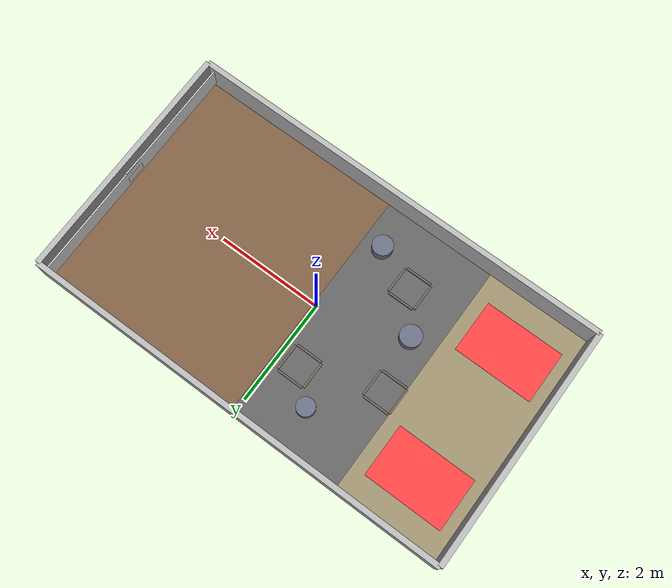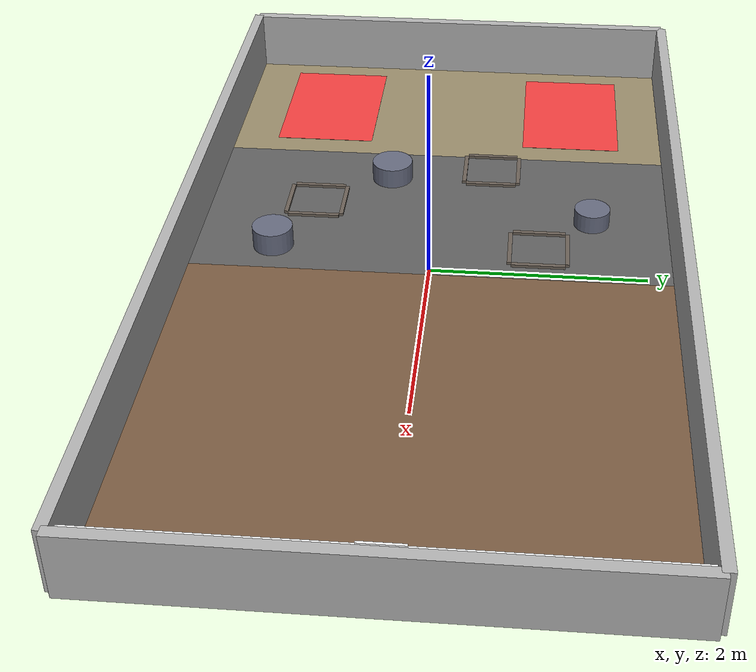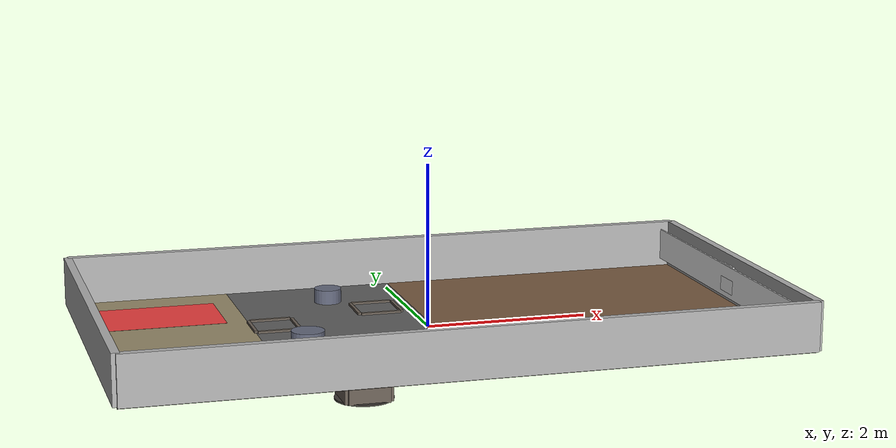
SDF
<?xml version="1.0" ?>
<sdf version="1.6">
  <world name="lunabotics_ucf">

    <!-- ==================== PHYSICS ==================== -->
    <physics type="ode">
      <max_step_size>0.001</max_step_size>
      <real_time_factor>1.0</real_time_factor>
      <real_time_update_rate>1000</real_time_update_rate>
      <gravity>0 0 -1.62</gravity>  <!-- Moon gravity -->
    </physics>

    <!-- ==================== LIGHTING ==================== -->
    <include>
      <uri>model://sun</uri>
    </include>

    <scene>
      <ambient>0.3 0.3 0.3 1</ambient>
      <background>0.0 0.0 0.0 1</background>
      <shadows>true</shadows>
    </scene>

    <!-- ==================== ARENA FRAME ==================== -->
    <!--
      UCF arena outer walls: 8.14 m × 4.57 m (single team half)
      Left wall = construction side  (X = -4.07)
      Right wall = excavation side   (X = +4.07)  ← Fiducial Rail mounted here
    -->
    <include>
      <uri>model://arena_frame_ucf</uri>
      <pose>0 0 0 0 0 0</pose>
    </include>

    <!-- ==================== FIDUCIAL RAIL ==================== -->
    <model name="fiducial_rail">
      <static>true</static>
      <pose>3.92 0 0.30 0 0 0</pose>
      <link name="link">
        <visual name="vis">
          <geometry><box><size>0.02 4.57 0.40</size></box></geometry>
          <material>
            <ambient>0.95 0.95 0.95 1</ambient>
            <diffuse>1.00 1.00 1.00 1</diffuse>
          </material>
        </visual>
      </link>
    </model>

    <!-- AprilTag board — right-wall centre for initial absolute position fix -->
    <include>
      <uri>model://apriltag_board</uri>
      <pose>3.92 0.0 0.34 0 1.57 3.14159</pose>
    </include>

    <!-- ==================== GROUND (TILED — with 3 crater gaps) ==================== -->

    <!-- Seg 1 — Strip A: X ∈ [-4.07, -2.05], full Y (2.02 × 4.57) -->
    <model name="ground_seg_1">
      <static>true</static>
      <pose>-3.06 0 -0.01 0 0 0</pose>
      <link name="link">
        <collision name="col"><geometry><box><size>2.02 4.57 0.02</size></box></geometry>
          <surface><friction><ode><mu>0.8</mu><mu2>0.8</mu2></ode></friction></surface>
        </collision>
        <visual name="vis"><geometry><box><size>2.02 4.57 0.02</size></box></geometry>
          <material><ambient>0.42 0.40 0.38 1</ambient><diffuse>0.52 0.50 0.48 1</diffuse></material>
        </visual>
      </link>
    </model>

    <!-- Seg 2a — Strip B below crater-3 gap: Y ∈ [-2.285, 0.25] (2.535 tall) -->
    <model name="ground_seg_2a">
      <static>true</static>
      <pose>-1.80 -1.0175 -0.01 0 0 0</pose>
      <link name="link">
        <collision name="col"><geometry><box><size>0.50 2.535 0.02</size></box></geometry>
          <surface><friction><ode><mu>0.8</mu><mu2>0.8</mu2></ode></friction></surface>
        </collision>
        <visual name="vis"><geometry><box><size>0.50 2.535 0.02</size></box></geometry>
          <material><ambient>0.42 0.40 0.38 1</ambient><diffuse>0.52 0.50 0.48 1</diffuse></material>
        </visual>
      </link>
    </model>

    <!-- Seg 2b — Strip B above crater-3 gap: Y ∈ [0.75, 2.285] (1.535 tall) -->
    <model name="ground_seg_2b">
      <static>true</static>
      <pose>-1.80 1.5175 -0.01 0 0 0</pose>
      <link name="link">
        <collision name="col"><geometry><box><size>0.50 1.535 0.02</size></box></geometry>
          <surface><friction><ode><mu>0.8</mu><mu2>0.8</mu2></ode></friction></surface>
        </collision>
        <visual name="vis"><geometry><box><size>0.50 1.535 0.02</size></box></geometry>
          <material><ambient>0.42 0.40 0.38 1</ambient><diffuse>0.52 0.50 0.48 1</diffuse></material>
        </visual>
      </link>
    </model>

    <!-- Seg 3 — Strip C bridge: X ∈ [-1.55, -1.35], full Y (0.20 × 4.57) -->
    <model name="ground_seg_3">
      <static>true</static>
      <pose>-1.45 0 -0.01 0 0 0</pose>
      <link name="link">
        <collision name="col"><geometry><box><size>0.20 4.57 0.02</size></box></geometry>
          <surface><friction><ode><mu>0.8</mu><mu2>0.8</mu2></ode></friction></surface>
        </collision>
        <visual name="vis"><geometry><box><size>0.20 4.57 0.02</size></box></geometry>
          <material><ambient>0.42 0.40 0.38 1</ambient><diffuse>0.52 0.50 0.48 1</diffuse></material>
        </visual>
      </link>
    </model>

    <!-- Seg 4a — Strip D below crater-2 gap: Y ∈ [-2.285, -1.45] (0.835 tall) -->
    <model name="ground_seg_4a">
      <static>true</static>
      <pose>-1.10 -1.8675 -0.01 0 0 0</pose>
      <link name="link">
        <collision name="col"><geometry><box><size>0.50 0.835 0.02</size></box></geometry>
          <surface><friction><ode><mu>0.8</mu><mu2>0.8</mu2></ode></friction></surface>
        </collision>
        <visual name="vis"><geometry><box><size>0.50 0.835 0.02</size></box></geometry>
          <material><ambient>0.42 0.40 0.38 1</ambient><diffuse>0.52 0.50 0.48 1</diffuse></material>
        </visual>
      </link>
    </model>

    <!-- Seg 4b — Strip D above crater-2 gap: Y ∈ [-0.95, 2.285] (3.235 tall) -->
    <model name="ground_seg_4b">
      <static>true</static>
      <pose>-1.10 0.6675 -0.01 0 0 0</pose>
      <link name="link">
        <collision name="col"><geometry><box><size>0.50 3.235 0.02</size></box></geometry>
          <surface><friction><ode><mu>0.8</mu><mu2>0.8</mu2></ode></friction></surface>
        </collision>
        <visual name="vis"><geometry><box><size>0.50 3.235 0.02</size></box></geometry>
          <material><ambient>0.42 0.40 0.38 1</ambient><diffuse>0.52 0.50 0.48 1</diffuse></material>
        </visual>
      </link>
    </model>

    <!-- Seg 5 — Strip E bridge: X ∈ [-0.85, -0.65], full Y (0.20 × 4.57) -->
    <model name="ground_seg_5">
      <static>true</static>
      <pose>-0.75 0 -0.01 0 0 0</pose>
      <link name="link">
        <collision name="col"><geometry><box><size>0.20 4.57 0.02</size></box></geometry>
          <surface><friction><ode><mu>0.8</mu><mu2>0.8</mu2></ode></friction></surface>
        </collision>
        <visual name="vis"><geometry><box><size>0.20 4.57 0.02</size></box></geometry>
          <material><ambient>0.42 0.40 0.38 1</ambient><diffuse>0.52 0.50 0.48 1</diffuse></material>
        </visual>
      </link>
    </model>

    <!-- Seg 6a — Strip F below crater-1 gap: Y ∈ [-2.285, 0.75] (3.035 tall) -->
    <model name="ground_seg_6a">
      <static>true</static>
      <pose>-0.40 -0.7675 -0.01 0 0 0</pose>
      <link name="link">
        <collision name="col"><geometry><box><size>0.50 3.035 0.02</size></box></geometry>
          <surface><friction><ode><mu>0.8</mu><mu2>0.8</mu2></ode></friction></surface>
        </collision>
        <visual name="vis"><geometry><box><size>0.50 3.035 0.02</size></box></geometry>
          <material><ambient>0.42 0.40 0.38 1</ambient><diffuse>0.52 0.50 0.48 1</diffuse></material>
        </visual>
      </link>
    </model>

    <!-- Seg 6b — Strip F above crater-1 gap: Y ∈ [1.25, 2.285] (1.035 tall) -->
    <model name="ground_seg_6b">
      <static>true</static>
      <pose>-0.40 1.7675 -0.01 0 0 0</pose>
      <link name="link">
        <collision name="col"><geometry><box><size>0.50 1.035 0.02</size></box></geometry>
          <surface><friction><ode><mu>0.8</mu><mu2>0.8</mu2></ode></friction></surface>
        </collision>
        <visual name="vis"><geometry><box><size>0.50 1.035 0.02</size></box></geometry>
          <material><ambient>0.42 0.40 0.38 1</ambient><diffuse>0.52 0.50 0.48 1</diffuse></material>
        </visual>
      </link>
    </model>

    <!-- Seg 7 — Strip G: X ∈ [-0.15, 4.07], full Y (4.22 × 4.57) -->
    <model name="ground_seg_7">
      <static>true</static>
      <pose>1.96 0 -0.01 0 0 0</pose>
      <link name="link">
        <collision name="col"><geometry><box><size>4.22 4.57 0.02</size></box></geometry>
          <surface><friction><ode><mu>0.8</mu><mu2>0.8</mu2></ode></friction></surface>
        </collision>
        <visual name="vis"><geometry><box><size>4.22 4.57 0.02</size></box></geometry>
          <material><ambient>0.42 0.40 0.38 1</ambient><diffuse>0.52 0.50 0.48 1</diffuse></material>
        </visual>
      </link>
    </model>

    <!-- ==================== ZONE MARKERS (visual only, Z=0.001) ==================== -->
    <!--
      Thin coloured overlays painted on the ground surface to delineate zones.
      No collision — purely visual reference in Gazebo.
    -->

    <!-- Construction zone — pale tan: X ∈ [-4.07, -2.07], centre (-3.07, 0) -->
    <model name="zone_construction">
      <static>true</static>
      <pose>-3.07 0 0.001 0 0 0</pose>
      <link name="link">
        <visual name="vis">
          <geometry><box><size>2.00 4.57 0.002</size></box></geometry>
          <material><ambient>0.50 0.45 0.35 1</ambient><diffuse>0.60 0.55 0.42 1</diffuse></material>
        </visual>
      </link>
    </model>

    <!-- Obstacle zone — dark grey: X ∈ [-2.07, 0.07], centre (-1.00, 0) -->
    <model name="zone_obstacle">
      <static>true</static>
      <pose>-1.00 0 0.001 0 0 0</pose>
      <link name="link">
        <visual name="vis">
          <geometry><box><size>2.14 4.57 0.002</size></box></geometry>
          <material><ambient>0.30 0.30 0.30 1</ambient><diffuse>0.38 0.38 0.38 1</diffuse></material>
        </visual>
      </link>
    </model>

    <!-- Excavation zone — warm brown: X ∈ [0.07, 4.07], centre (2.07, 0) -->
    <model name="zone_excavation">
      <static>true</static>
      <pose>2.07 0 0.001 0 0 0</pose>
      <link name="link">
        <visual name="vis">
          <geometry><box><size>4.00 4.57 0.002</size></box></geometry>
          <material><ambient>0.38 0.28 0.20 1</ambient><diffuse>0.48 0.36 0.26 1</diffuse></material>
        </visual>
      </link>
    </model>

    <!-- ==================== BERM TARGETS (construction zone) ==================== -->

    <!-- Upper BERM target — centred at (-3.07, 1.30) -->
    <model name="berm_target_upper">
      <static>true</static>
      <pose>-3.07 1.30 0.002 0 0 0</pose>
      <link name="link">
        <visual name="vis">
          <geometry><box><size>1.50 1.00 0.004</size></box></geometry>
          <material><ambient>0.85 0.20 0.20 1</ambient><diffuse>0.95 0.25 0.25 1</diffuse></material>
        </visual>
      </link>
    </model>

    <!-- Lower BERM target — centred at (-3.07, -1.30) -->
    <model name="berm_target_lower">
      <static>true</static>
      <pose>-3.07 -1.30 0.002 0 0 0</pose>
      <link name="link">
        <visual name="vis">
          <geometry><box><size>1.50 1.00 0.004</size></box></geometry>
          <material><ambient>0.85 0.20 0.20 1</ambient><diffuse>0.95 0.25 0.25 1</diffuse></material>
        </visual>
      </link>
    </model>

    <!-- ==================== BOULDERS (obstacle zone) ==================== -->

    <!-- Boulder 1: (-0.30, -1.50) — r=0.19m, h=0.22m -->
    <model name="boulder_1">
      <static>true</static>
      <pose>-0.30 -1.50 0.11 0 0 0.4</pose>
      <link name="link">
        <collision name="col">
          <geometry><cylinder><radius>0.19</radius><length>0.22</length></cylinder></geometry>
        </collision>
        <visual name="vis">
          <geometry><cylinder><radius>0.19</radius><length>0.22</length></cylinder></geometry>
          <material>
            <ambient>0.30 0.32 0.38 1</ambient>
            <diffuse>0.40 0.42 0.50 1</diffuse>
            <specular>0.05 0.05 0.05 1</specular>
          </material>
        </visual>
      </link>
    </model>

    <!-- Boulder 2: (-0.90, 1.50) — r=0.17m, h=0.18m -->
    <model name="boulder_2">
      <static>true</static>
      <pose>-0.90 1.50 0.09 0 0 1.2</pose>
      <link name="link">
        <collision name="col">
          <geometry><cylinder><radius>0.17</radius><length>0.18</length></cylinder></geometry>
        </collision>
        <visual name="vis">
          <geometry><cylinder><radius>0.17</radius><length>0.18</length></cylinder></geometry>
          <material>
            <ambient>0.30 0.32 0.38 1</ambient>
            <diffuse>0.40 0.42 0.50 1</diffuse>
            <specular>0.05 0.05 0.05 1</specular>
          </material>
        </visual>
      </link>
    </model>

    <!-- Boulder 3: (-1.60, -0.50) — r=0.20m, h=0.20m -->
    <model name="boulder_3">
      <static>true</static>
      <pose>-1.60 -0.50 0.10 0 0 2.5</pose>
      <link name="link">
        <collision name="col">
          <geometry><cylinder><radius>0.20</radius><length>0.20</length></cylinder></geometry>
        </collision>
        <visual name="vis">
          <geometry><cylinder><radius>0.20</radius><length>0.20</length></cylinder></geometry>
          <material>
            <ambient>0.30 0.32 0.38 1</ambient>
            <diffuse>0.40 0.42 0.50 1</diffuse>
            <specular>0.05 0.05 0.05 1</specular>
          </material>
        </visual>
      </link>
    </model>

    <!-- ==================== CRATERS (obstacle zone) ==================== -->

    <!--
      CRATER 1 — centre (-0.40, 1.00), depth=0.45m
      Gap: X ∈ [-0.65, -0.15], Y ∈ [0.75, 1.25]
    -->
    <model name="crater_1_floor">
      <static>true</static>
      <pose>-0.40 1.00 -0.45 0 0 0</pose>
      <link name="link">
        <collision name="col"><geometry><cylinder><radius>0.35</radius><length>0.02</length></cylinder></geometry></collision>
        <visual name="vis">
          <geometry><cylinder><radius>0.35</radius><length>0.02</length></cylinder></geometry>
          <material><ambient>0.20 0.18 0.16 1</ambient><diffuse>0.26 0.24 0.22 1</diffuse></material>
        </visual>
      </link>
    </model>
    <model name="crater_1_wall_north">
      <static>true</static>
      <pose>-0.40 1.27 -0.21 0 0 0</pose>
      <link name="link">
        <collision name="col"><geometry><box><size>0.50 0.04 0.48</size></box></geometry></collision>
        <visual name="vis">
          <geometry><box><size>0.50 0.04 0.48</size></box></geometry>
          <material><ambient>0.35 0.32 0.28 1</ambient><diffuse>0.42 0.38 0.34 1</diffuse></material>
        </visual>
      </link>
    </model>
    <model name="crater_1_wall_south">
      <static>true</static>
      <pose>-0.40 0.73 -0.21 0 0 0</pose>
      <link name="link">
        <collision name="col"><geometry><box><size>0.50 0.04 0.48</size></box></geometry></collision>
        <visual name="vis">
          <geometry><box><size>0.50 0.04 0.48</size></box></geometry>
          <material><ambient>0.35 0.32 0.28 1</ambient><diffuse>0.42 0.38 0.34 1</diffuse></material>
        </visual>
      </link>
    </model>
    <model name="crater_1_wall_east">
      <static>true</static>
      <pose>-0.13 1.00 -0.21 0 0 0</pose>
      <link name="link">
        <collision name="col"><geometry><box><size>0.04 0.50 0.48</size></box></geometry></collision>
        <visual name="vis">
          <geometry><box><size>0.04 0.50 0.48</size></box></geometry>
          <material><ambient>0.35 0.32 0.28 1</ambient><diffuse>0.42 0.38 0.34 1</diffuse></material>
        </visual>
      </link>
    </model>
    <model name="crater_1_wall_west">
      <static>true</static>
      <pose>-0.67 1.00 -0.21 0 0 0</pose>
      <link name="link">
        <collision name="col"><geometry><box><size>0.04 0.50 0.48</size></box></geometry></collision>
        <visual name="vis">
          <geometry><box><size>0.04 0.50 0.48</size></box></geometry>
          <material><ambient>0.35 0.32 0.28 1</ambient><diffuse>0.42 0.38 0.34 1</diffuse></material>
        </visual>
      </link>
    </model>

    <!--
      CRATER 2 — centre (-1.10, -1.20), depth=0.45m
      Gap: X ∈ [-1.35, -0.85], Y ∈ [-1.45, -0.95]
    -->
    <model name="crater_2_floor">
      <static>true</static>
      <pose>-1.10 -1.20 -0.45 0 0 0</pose>
      <link name="link">
        <collision name="col"><geometry><cylinder><radius>0.35</radius><length>0.02</length></cylinder></geometry></collision>
        <visual name="vis">
          <geometry><cylinder><radius>0.35</radius><length>0.02</length></cylinder></geometry>
          <material><ambient>0.20 0.18 0.16 1</ambient><diffuse>0.26 0.24 0.22 1</diffuse></material>
        </visual>
      </link>
    </model>
    <model name="crater_2_wall_north">
      <static>true</static>
      <pose>-1.10 -0.93 -0.21 0 0 0</pose>
      <link name="link">
        <collision name="col"><geometry><box><size>0.50 0.04 0.48</size></box></geometry></collision>
        <visual name="vis">
          <geometry><box><size>0.50 0.04 0.48</size></box></geometry>
          <material><ambient>0.35 0.32 0.28 1</ambient><diffuse>0.42 0.38 0.34 1</diffuse></material>
        </visual>
      </link>
    </model>
    <model name="crater_2_wall_south">
      <static>true</static>
      <pose>-1.10 -1.47 -0.21 0 0 0</pose>
      <link name="link">
        <collision name="col"><geometry><box><size>0.50 0.04 0.48</size></box></geometry></collision>
        <visual name="vis">
          <geometry><box><size>0.50 0.04 0.48</size></box></geometry>
          <material><ambient>0.35 0.32 0.28 1</ambient><diffuse>0.42 0.38 0.34 1</diffuse></material>
        </visual>
      </link>
    </model>
    <model name="crater_2_wall_east">
      <static>true</static>
      <pose>-0.83 -1.20 -0.21 0 0 0</pose>
      <link name="link">
        <collision name="col"><geometry><box><size>0.04 0.50 0.48</size></box></geometry></collision>
        <visual name="vis">
          <geometry><box><size>0.04 0.50 0.48</size></box></geometry>
          <material><ambient>0.35 0.32 0.28 1</ambient><diffuse>0.42 0.38 0.34 1</diffuse></material>
        </visual>
      </link>
    </model>
    <model name="crater_2_wall_west">
      <static>true</static>
      <pose>-1.37 -1.20 -0.21 0 0 0</pose>
      <link name="link">
        <collision name="col"><geometry><box><size>0.04 0.50 0.48</size></box></geometry></collision>
        <visual name="vis">
          <geometry><box><size>0.04 0.50 0.48</size></box></geometry>
          <material><ambient>0.35 0.32 0.28 1</ambient><diffuse>0.42 0.38 0.34 1</diffuse></material>
        </visual>
      </link>
    </model>

    <!--
      CRATER 3 — centre (-1.80, 0.50), depth=0.45m
      Gap: X ∈ [-2.05, -1.55], Y ∈ [0.25, 0.75]
    -->
    <model name="crater_3_floor">
      <static>true</static>
      <pose>-1.80 0.50 -0.45 0 0 0</pose>
      <link name="link">
        <collision name="col"><geometry><cylinder><radius>0.35</radius><length>0.02</length></cylinder></geometry></collision>
        <visual name="vis">
          <geometry><cylinder><radius>0.35</radius><length>0.02</length></cylinder></geometry>
          <material><ambient>0.20 0.18 0.16 1</ambient><diffuse>0.26 0.24 0.22 1</diffuse></material>
        </visual>
      </link>
    </model>
    <model name="crater_3_wall_north">
      <static>true</static>
      <pose>-1.80 0.77 -0.21 0 0 0</pose>
      <link name="link">
        <collision name="col"><geometry><box><size>0.50 0.04 0.48</size></box></geometry></collision>
        <visual name="vis">
          <geometry><box><size>0.50 0.04 0.48</size></box></geometry>
          <material><ambient>0.35 0.32 0.28 1</ambient><diffuse>0.42 0.38 0.34 1</diffuse></material>
        </visual>
      </link>
    </model>
    <model name="crater_3_wall_south">
      <static>true</static>
      <pose>-1.80 0.23 -0.21 0 0 0</pose>
      <link name="link">
        <collision name="col"><geometry><box><size>0.50 0.04 0.48</size></box></geometry></collision>
        <visual name="vis">
          <geometry><box><size>0.50 0.04 0.48</size></box></geometry>
          <material><ambient>0.35 0.32 0.28 1</ambient><diffuse>0.42 0.38 0.34 1</diffuse></material>
        </visual>
      </link>
    </model>
    <model name="crater_3_wall_east">
      <static>true</static>
      <pose>-1.53 0.50 -0.21 0 0 0</pose>
      <link name="link">
        <collision name="col"><geometry><box><size>0.04 0.50 0.48</size></box></geometry></collision>
        <visual name="vis">
          <geometry><box><size>0.04 0.50 0.48</size></box></geometry>
          <material><ambient>0.35 0.32 0.28 1</ambient><diffuse>0.42 0.38 0.34 1</diffuse></material>
        </visual>
      </link>
    </model>
    <model name="crater_3_wall_west">
      <static>true</static>
      <pose>-2.07 0.50 -0.21 0 0 0</pose>
      <link name="link">
        <collision name="col"><geometry><box><size>0.04 0.50 0.48</size></box></geometry></collision>
        <visual name="vis">
          <geometry><box><size>0.04 0.50 0.48</size></box></geometry>
          <material><ambient>0.35 0.32 0.28 1</ambient><diffuse>0.42 0.38 0.34 1</diffuse></material>
        </visual>
      </link>
    </model>

  </world>
</sdf>

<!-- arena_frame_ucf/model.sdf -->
<sdf version='1.7'>
  <model name='arena_frame_ucf'>
    <pose>0 0 0 0 0 0</pose>
    <static>true</static>

    <!-- Left Wall (construction side)  X=-4.07, spans full Y 4.57 m -->
    <link name='left_wall'>
      <pose>-4.07 0 0.3 0 0 0</pose>
      <collision name='collision'>
        <geometry><box><size>0.1 4.57 0.6</size></box></geometry>
      </collision>
      <visual name='visual'>
        <geometry><box><size>0.1 4.57 0.6</size></box></geometry>
        <material>
          <ambient>0.7 0.7 0.7 1</ambient>
          <diffuse>0.7 0.7 0.7 1</diffuse>
        </material>
      </visual>
    </link>

    <!-- Right Wall (excavation / fiducial side)  X=+4.07, spans full Y 4.57 m -->
    <link name='right_wall'>
      <pose>4.07 0 0.3 0 0 0</pose>
      <collision name='collision'>
        <geometry><box><size>0.1 4.57 0.6</size></box></geometry>
      </collision>
      <visual name='visual'>
        <geometry><box><size>0.1 4.57 0.6</size></box></geometry>
        <material>
          <ambient>0.7 0.7 0.7 1</ambient>
          <diffuse>0.7 0.7 0.7 1</diffuse>
        </material>
      </visual>
    </link>

    <!-- Top Wall  Y=+2.285, spans full X 8.14 m -->
    <link name='top_wall'>
      <pose>0 2.285 0.3 0 0 0</pose>
      <collision name='collision'>
        <geometry><box><size>8.14 0.1 0.6</size></box></geometry>
      </collision>
      <visual name='visual'>
        <geometry><box><size>8.14 0.1 0.6</size></box></geometry>
        <material>
          <ambient>0.7 0.7 0.7 1</ambient>
          <diffuse>0.7 0.7 0.7 1</diffuse>
        </material>
      </visual>
    </link>

    <!-- Bottom Wall  Y=-2.285, spans full X 8.14 m -->
    <link name='bottom_wall'>
      <pose>0 -2.285 0.3 0 0 0</pose>
      <collision name='collision'>
        <geometry><box><size>8.14 0.1 0.6</size></box></geometry>
      </collision>
      <visual name='visual'>
        <geometry><box><size>8.14 0.1 0.6</size></box></geometry>
        <material>
          <ambient>0.7 0.7 0.7 1</ambient>
          <diffuse>0.7 0.7 0.7 1</diffuse>
        </material>
      </visual>
    </link>

  </model>
</sdf>

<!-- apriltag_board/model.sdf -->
<sdf version='1.7'>
  <model name='apriltag_board'>
    <pose>0 0 0.5 0 1.57 0</pose>
    <static>true</static>

    <link name='board'>
      <visual name='visual'>
        <geometry>
          <box>
            <size>0.36 0.36 0.02</size>
          </box>
        </geometry>
        <material>
          <ambient>1 1 1 1</ambient>
          <diffuse>1 1 1 1</diffuse>
        </material>
      </visual>
      <collision name='collision'>
        <geometry>
          <box>
            <size>0.36 0.36 0.02</size>
          </box>
        </geometry>
      </collision>
    </link>
  </model>
</sdf>
